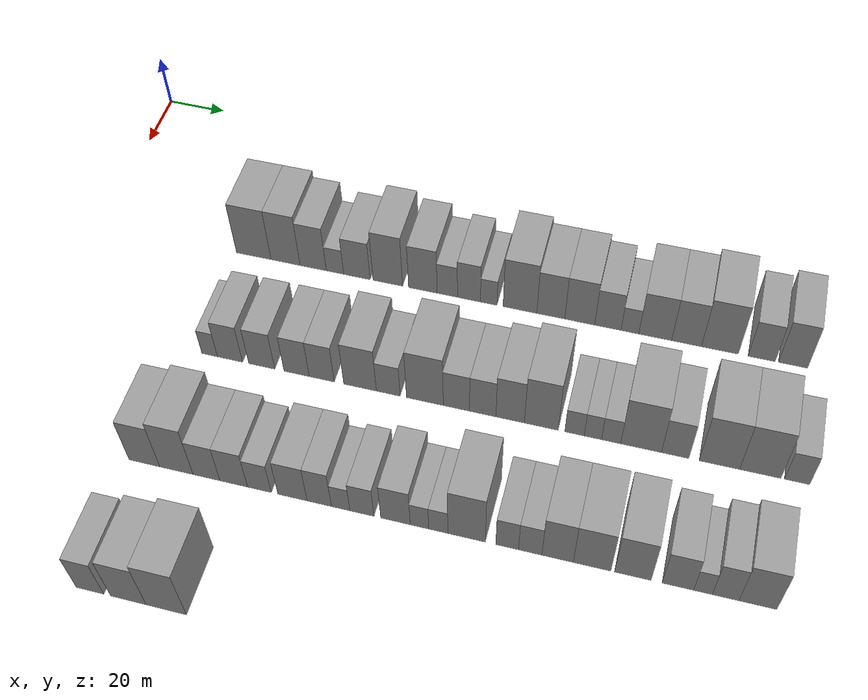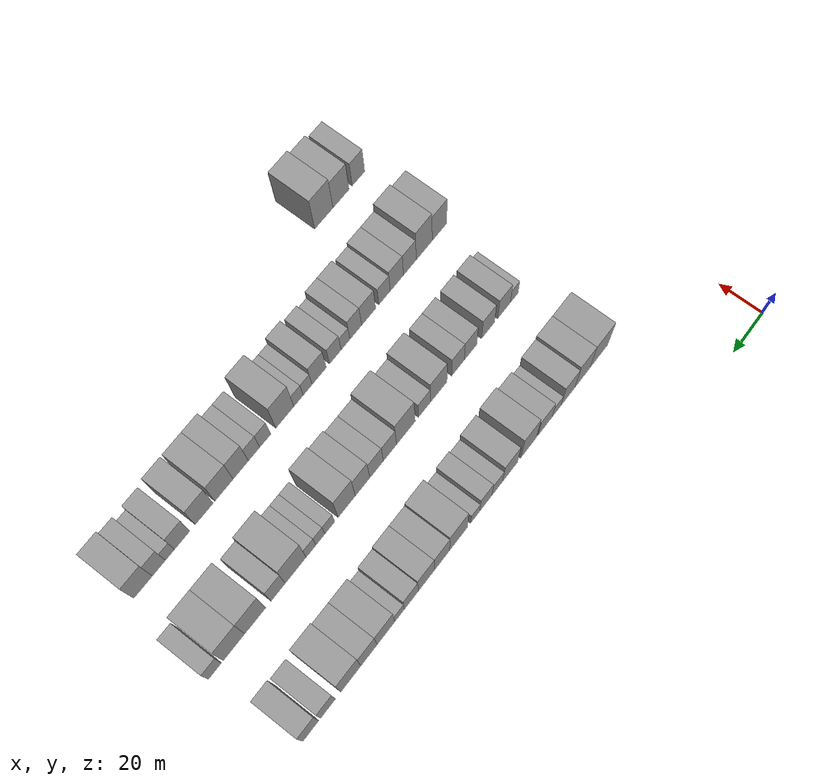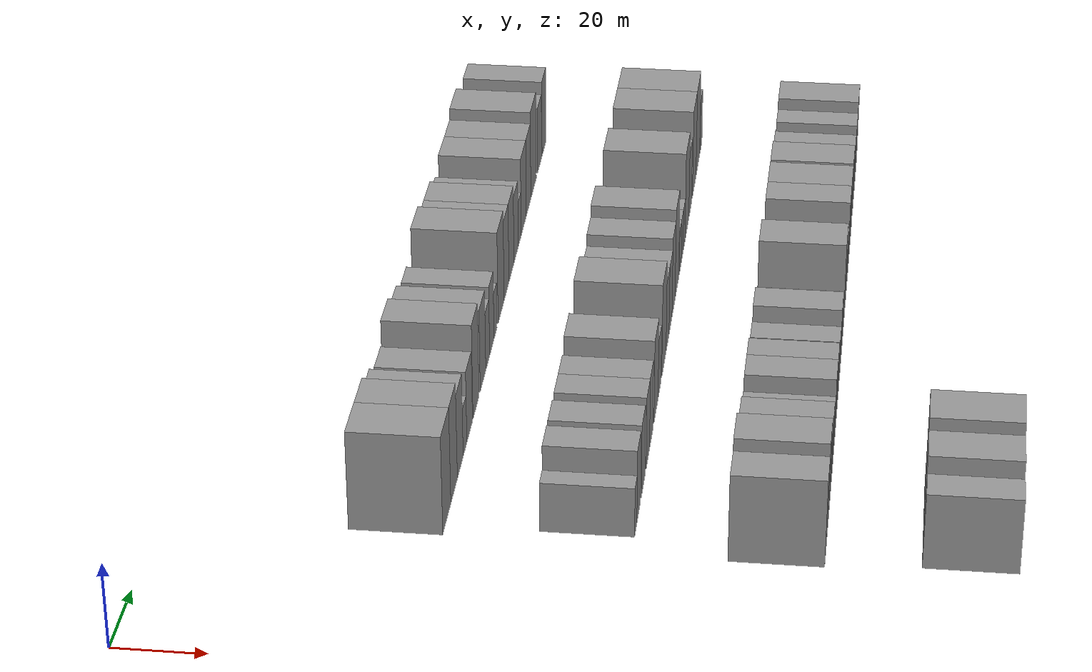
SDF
<sdf version="1.6">
 <world name="default">
  <model name="building_74">
   <static>1</static>
   <pose>50.0000 53.0995 0 0.000000 0.000000 0.000000</pose>
   <link name="link">
    <pose>0 0 12.00 0 0 0</pose>
    <collision name="collision"><geometry><box><size>20.0000 11.8979 24.0000</size></box></geometry></collision>
    <visual name="visual">
     <cast_shadows>0</cast_shadows>
     <geometry><box><size>20.0000 11.8979 24.0000</size></box></geometry>
     <material>
      <script>
       <uri>model://grey_wall/materials/scripts</uri>
       <uri>model://grey_wall/materials/textures</uri>
       <name>vrc/grey_wall</name>
      </script>
     </material>
    </visual>
   </link>
  </model>
  <model name="building_75">
   <static>1</static>
   <pose>50.0000 64.0061 0 0.000000 0.000000 0.000000</pose>
   <link name="link">
    <pose>0 0 12.00 0 0 0</pose>
    <collision name="collision"><geometry><box><size>20.0000 9.9154 24.0000</size></box></geometry></collision>
    <visual name="visual">
     <cast_shadows>0</cast_shadows>
     <geometry><box><size>20.0000 9.9154 24.0000</size></box></geometry>
     <material>
      <script>
       <uri>model://grey_wall/materials/scripts</uri>
       <uri>model://grey_wall/materials/textures</uri>
       <name>vrc/grey_wall</name>
      </script>
     </material>
    </visual>
   </link>
  </model>
  <model name="building_76">
   <static>1</static>
   <pose>50.0000 73.4314 0 0.000000 0.000000 0.000000</pose>
   <link name="link">
    <pose>0 0 10.50 0 0 0</pose>
    <collision name="collision"><geometry><box><size>20.0000 8.9352 21.0000</size></box></geometry></collision>
    <visual name="visual">
     <cast_shadows>0</cast_shadows>
     <geometry><box><size>20.0000 8.9352 21.0000</size></box></geometry>
     <material>
      <script>
       <uri>model://grey_wall/materials/scripts</uri>
       <uri>model://grey_wall/materials/textures</uri>
       <name>vrc/grey_wall</name>
      </script>
     </material>
    </visual>
   </link>
  </model>
  <model name="building_77">
   <static>1</static>
   <pose>50.0000 80.8159 0 0.000000 0.000000 0.000000</pose>
   <link name="link">
    <pose>0 0 6.00 0 0 0</pose>
    <collision name="collision"><geometry><box><size>20.0000 5.8337 12.0000</size></box></geometry></collision>
    <visual name="visual">
     <cast_shadows>0</cast_shadows>
     <geometry><box><size>20.0000 5.8337 12.0000</size></box></geometry>
     <material>
      <script>
       <uri>model://grey_wall/materials/scripts</uri>
       <uri>model://grey_wall/materials/textures</uri>
       <name>vrc/grey_wall</name>
      </script>
     </material>
    </visual>
   </link>
  </model>
  <model name="building_78">
   <static>1</static>
   <pose>50.0000 88.1796 0 0.000000 0.000000 0.000000</pose>
   <link name="link">
    <pose>0 0 9.00 0 0 0</pose>
    <collision name="collision"><geometry><box><size>20.0000 8.8938 18.0000</size></box></geometry></collision>
    <visual name="visual">
     <cast_shadows>0</cast_shadows>
     <geometry><box><size>20.0000 8.8938 18.0000</size></box></geometry>
     <material>
      <script>
       <uri>model://grey_wall/materials/scripts</uri>
       <uri>model://grey_wall/materials/textures</uri>
       <name>vrc/grey_wall</name>
      </script>
     </material>
    </visual>
   </link>
  </model>
  <model name="building_79">
   <static>1</static>
   <pose>50.0000 98.5539 0 0.000000 0.000000 0.000000</pose>
   <link name="link">
    <pose>0 0 12.00 0 0 0</pose>
    <collision name="collision"><geometry><box><size>20.0000 9.8548 24.0000</size></box></geometry></collision>
    <visual name="visual">
     <cast_shadows>0</cast_shadows>
     <geometry><box><size>20.0000 9.8548 24.0000</size></box></geometry>
     <material>
      <script>
       <uri>model://grey_wall/materials/scripts</uri>
       <uri>model://grey_wall/materials/textures</uri>
       <name>vrc/grey_wall</name>
      </script>
     </material>
    </visual>
   </link>
  </model>
  <model name="building_80">
   <static>1</static>
   <pose>50.0000 110.1919 0 0.000000 0.000000 0.000000</pose>
   <link name="link">
    <pose>0 0 10.50 0 0 0</pose>
    <collision name="collision"><geometry><box><size>20.0000 9.4211 21.0000</size></box></geometry></collision>
    <visual name="visual">
     <cast_shadows>0</cast_shadows>
     <geometry><box><size>20.0000 9.4211 21.0000</size></box></geometry>
     <material>
      <script>
       <uri>model://grey_wall/materials/scripts</uri>
       <uri>model://grey_wall/materials/textures</uri>
       <name>vrc/grey_wall</name>
      </script>
     </material>
    </visual>
   </link>
  </model>
  <model name="building_81">
   <static>1</static>
   <pose>50.0000 118.2377 0 0.000000 0.000000 0.000000</pose>
   <link name="link">
    <pose>0 0 7.50 0 0 0</pose>
    <collision name="collision"><geometry><box><size>20.0000 6.6705 15.0000</size></box></geometry></collision>
    <visual name="visual">
     <cast_shadows>0</cast_shadows>
     <geometry><box><size>20.0000 6.6705 15.0000</size></box></geometry>
     <material>
      <script>
       <uri>model://grey_wall/materials/scripts</uri>
       <uri>model://grey_wall/materials/textures</uri>
       <name>vrc/grey_wall</name>
      </script>
     </material>
    </visual>
   </link>
  </model>
  <model name="building_82">
   <static>1</static>
   <pose>50.0000 125.3388 0 0.000000 0.000000 0.000000</pose>
   <link name="link">
    <pose>0 0 9.00 0 0 0</pose>
    <collision name="collision"><geometry><box><size>20.0000 7.5318 18.0000</size></box></geometry></collision>
    <visual name="visual">
     <cast_shadows>0</cast_shadows>
     <geometry><box><size>20.0000 7.5318 18.0000</size></box></geometry>
     <material>
      <script>
       <uri>model://grey_wall/materials/scripts</uri>
       <uri>model://grey_wall/materials/textures</uri>
       <name>vrc/grey_wall</name>
      </script>
     </material>
    </visual>
   </link>
  </model>
  <model name="building_83">
   <static>1</static>
   <pose>50.0000 131.7995 0 0.000000 0.000000 0.000000</pose>
   <link name="link">
    <pose>0 0 6.00 0 0 0</pose>
    <collision name="collision"><geometry><box><size>20.0000 5.3895 12.0000</size></box></geometry></collision>
    <visual name="visual">
     <cast_shadows>0</cast_shadows>
     <geometry><box><size>20.0000 5.3895 12.0000</size></box></geometry>
     <material>
      <script>
       <uri>model://grey_wall/materials/scripts</uri>
       <uri>model://grey_wall/materials/textures</uri>
       <name>vrc/grey_wall</name>
      </script>
     </material>
    </visual>
   </link>
  </model>
  <model name="building_84">
   <static>1</static>
   <pose>50.0000 141.9292 0 0.000000 0.000000 0.000000</pose>
   <link name="link">
    <pose>0 0 12.00 0 0 0</pose>
    <collision name="collision"><geometry><box><size>20.0000 10.8699 24.0000</size></box></geometry></collision>
    <visual name="visual">
     <cast_shadows>0</cast_shadows>
     <geometry><box><size>20.0000 10.8699 24.0000</size></box></geometry>
     <material>
      <script>
       <uri>model://grey_wall/materials/scripts</uri>
       <uri>model://grey_wall/materials/textures</uri>
       <name>vrc/grey_wall</name>
      </script>
     </material>
    </visual>
   </link>
  </model>
  <model name="building_85">
   <static>1</static>
   <pose>50.0000 151.8474 0 0.000000 0.000000 0.000000</pose>
   <link name="link">
    <pose>0 0 10.50 0 0 0</pose>
    <collision name="collision"><geometry><box><size>20.0000 8.9664 21.0000</size></box></geometry></collision>
    <visual name="visual">
     <cast_shadows>0</cast_shadows>
     <geometry><box><size>20.0000 8.9664 21.0000</size></box></geometry>
     <material>
      <script>
       <uri>model://grey_wall/materials/scripts</uri>
       <uri>model://grey_wall/materials/textures</uri>
       <name>vrc/grey_wall</name>
      </script>
     </material>
    </visual>
   </link>
  </model>
  <model name="building_86">
   <static>1</static>
   <pose>50.0000 161.1051 0 0.000000 0.000000 0.000000</pose>
   <link name="link">
    <pose>0 0 10.50 0 0 0</pose>
    <collision name="collision"><geometry><box><size>20.0000 9.5489 21.0000</size></box></geometry></collision>
    <visual name="visual">
     <cast_shadows>0</cast_shadows>
     <geometry><box><size>20.0000 9.5489 21.0000</size></box></geometry>
     <material>
      <script>
       <uri>model://grey_wall/materials/scripts</uri>
       <uri>model://grey_wall/materials/textures</uri>
       <name>vrc/grey_wall</name>
      </script>
     </material>
    </visual>
   </link>
  </model>
  <model name="building_87">
   <static>1</static>
   <pose>50.0000 170.0418 0 0.000000 0.000000 0.000000</pose>
   <link name="link">
    <pose>0 0 9.00 0 0 0</pose>
    <collision name="collision"><geometry><box><size>20.0000 8.3246 18.0000</size></box></geometry></collision>
    <visual name="visual">
     <cast_shadows>0</cast_shadows>
     <geometry><box><size>20.0000 8.3246 18.0000</size></box></geometry>
     <material>
      <script>
       <uri>model://grey_wall/materials/scripts</uri>
       <uri>model://grey_wall/materials/textures</uri>
       <name>vrc/grey_wall</name>
      </script>
     </material>
    </visual>
   </link>
  </model>
  <model name="building_88">
   <static>1</static>
   <pose>50.0000 176.9949 0 0.000000 0.000000 0.000000</pose>
   <link name="link">
    <pose>0 0 6.00 0 0 0</pose>
    <collision name="collision"><geometry><box><size>20.0000 5.5816 12.0000</size></box></geometry></collision>
    <visual name="visual">
     <cast_shadows>0</cast_shadows>
     <geometry><box><size>20.0000 5.5816 12.0000</size></box></geometry>
     <material>
      <script>
       <uri>model://grey_wall/materials/scripts</uri>
       <uri>model://grey_wall/materials/textures</uri>
       <name>vrc/grey_wall</name>
      </script>
     </material>
    </visual>
   </link>
  </model>
  <model name="building_89">
   <static>1</static>
   <pose>50.0000 184.9259 0 0.000000 0.000000 0.000000</pose>
   <link name="link">
    <pose>0 0 10.50 0 0 0</pose>
    <collision name="collision"><geometry><box><size>20.0000 10.2804 21.0000</size></box></geometry></collision>
    <visual name="visual">
     <cast_shadows>0</cast_shadows>
     <geometry><box><size>20.0000 10.2804 21.0000</size></box></geometry>
     <material>
      <script>
       <uri>model://grey_wall/materials/scripts</uri>
       <uri>model://grey_wall/materials/textures</uri>
       <name>vrc/grey_wall</name>
      </script>
     </material>
    </visual>
   </link>
  </model>
  <model name="building_90">
   <static>1</static>
   <pose>50.0000 194.7069 0 0.000000 0.000000 0.000000</pose>
   <link name="link">
    <pose>0 0 10.50 0 0 0</pose>
    <collision name="collision"><geometry><box><size>20.0000 9.2816 21.0000</size></box></geometry></collision>
    <visual name="visual">
     <cast_shadows>0</cast_shadows>
     <geometry><box><size>20.0000 9.2816 21.0000</size></box></geometry>
     <material>
      <script>
       <uri>model://grey_wall/materials/scripts</uri>
       <uri>model://grey_wall/materials/textures</uri>
       <name>vrc/grey_wall</name>
      </script>
     </material>
    </visual>
   </link>
  </model>
  <model name="building_91">
   <static>1</static>
   <pose>50.0000 205.0362 0 0.000000 0.000000 0.000000</pose>
   <link name="link">
    <pose>0 0 12.00 0 0 0</pose>
    <collision name="collision"><geometry><box><size>20.0000 11.3770 24.0000</size></box></geometry></collision>
    <visual name="visual">
     <cast_shadows>0</cast_shadows>
     <geometry><box><size>20.0000 11.3770 24.0000</size></box></geometry>
     <material>
      <script>
       <uri>model://grey_wall/materials/scripts</uri>
       <uri>model://grey_wall/materials/textures</uri>
       <name>vrc/grey_wall</name>
      </script>
     </material>
    </visual>
   </link>
  </model>
  <model name="building_92">
   <static>1</static>
   <pose>50.0000 217.8585 0 0.000000 0.000000 0.000000</pose>
   <link name="link">
    <pose>0 0 9.00 0 0 0</pose>
    <collision name="collision"><geometry><box><size>20.0000 8.2677 18.0000</size></box></geometry></collision>
    <visual name="visual">
     <cast_shadows>0</cast_shadows>
     <geometry><box><size>20.0000 8.2677 18.0000</size></box></geometry>
     <material>
      <script>
       <uri>model://grey_wall/materials/scripts</uri>
       <uri>model://grey_wall/materials/textures</uri>
       <name>vrc/grey_wall</name>
      </script>
     </material>
    </visual>
   </link>
  </model>
  <model name="building_93">
   <static>1</static>
   <pose>50.0000 227.4027 0 0.000000 0.000000 0.000000</pose>
   <link name="link">
    <pose>0 0 10.50 0 0 0</pose>
    <collision name="collision"><geometry><box><size>20.0000 8.8206 21.0000</size></box></geometry></collision>
    <visual name="visual">
     <cast_shadows>0</cast_shadows>
     <geometry><box><size>20.0000 8.8206 21.0000</size></box></geometry>
     <material>
      <script>
       <uri>model://grey_wall/materials/scripts</uri>
       <uri>model://grey_wall/materials/textures</uri>
       <name>vrc/grey_wall</name>
      </script>
     </material>
    </visual>
   </link>
  </model>
  <model name="building_204">
   <static>1</static>
   <pose>90.0000 53.2055 0 0.000000 0.000000 0.000000</pose>
   <link name="link">
    <pose>0 0 6.00 0 0 0</pose>
    <collision name="collision"><geometry><box><size>20.0000 5.0664 12.0000</size></box></geometry></collision>
    <visual name="visual">
     <cast_shadows>0</cast_shadows>
     <geometry><box><size>20.0000 5.0664 12.0000</size></box></geometry>
     <material>
      <script>
       <uri>model://grey_wall/materials/scripts</uri>
       <uri>model://grey_wall/materials/textures</uri>
       <name>vrc/grey_wall</name>
      </script>
     </material>
    </visual>
   </link>
  </model>
  <model name="building_205">
   <static>1</static>
   <pose>90.0000 59.8243 0 0.000000 0.000000 0.000000</pose>
   <link name="link">
    <pose>0 0 9.00 0 0 0</pose>
    <collision name="collision"><geometry><box><size>20.0000 8.1713 18.0000</size></box></geometry></collision>
    <visual name="visual">
     <cast_shadows>0</cast_shadows>
     <geometry><box><size>20.0000 8.1713 18.0000</size></box></geometry>
     <material>
      <script>
       <uri>model://grey_wall/materials/scripts</uri>
       <uri>model://grey_wall/materials/textures</uri>
       <name>vrc/grey_wall</name>
      </script>
     </material>
    </visual>
   </link>
  </model>
  <model name="building_206">
   <static>1</static>
   <pose>90.0000 70.1009 0 0.000000 0.000000 0.000000</pose>
   <link name="link">
    <pose>0 0 9.00 0 0 0</pose>
    <collision name="collision"><geometry><box><size>20.0000 8.3819 18.0000</size></box></geometry></collision>
    <visual name="visual">
     <cast_shadows>0</cast_shadows>
     <geometry><box><size>20.0000 8.3819 18.0000</size></box></geometry>
     <material>
      <script>
       <uri>model://grey_wall/materials/scripts</uri>
       <uri>model://grey_wall/materials/textures</uri>
       <name>vrc/grey_wall</name>
      </script>
     </material>
    </visual>
   </link>
  </model>
  <model name="building_207">
   <static>1</static>
   <pose>90.0000 81.3185 0 0.000000 0.000000 0.000000</pose>
   <link name="link">
    <pose>0 0 9.00 0 0 0</pose>
    <collision name="collision"><geometry><box><size>20.0000 8.0533 18.0000</size></box></geometry></collision>
    <visual name="visual">
     <cast_shadows>0</cast_shadows>
     <geometry><box><size>20.0000 8.0533 18.0000</size></box></geometry>
     <material>
      <script>
       <uri>model://grey_wall/materials/scripts</uri>
       <uri>model://grey_wall/materials/textures</uri>
       <name>vrc/grey_wall</name>
      </script>
     </material>
    </visual>
   </link>
  </model>
  <model name="building_208">
   <static>1</static>
   <pose>90.0000 89.3182 0 0.000000 0.000000 0.000000</pose>
   <link name="link">
    <pose>0 0 9.00 0 0 0</pose>
    <collision name="collision"><geometry><box><size>20.0000 7.9461 18.0000</size></box></geometry></collision>
    <visual name="visual">
     <cast_shadows>0</cast_shadows>
     <geometry><box><size>20.0000 7.9461 18.0000</size></box></geometry>
     <material>
      <script>
       <uri>model://grey_wall/materials/scripts</uri>
       <uri>model://grey_wall/materials/textures</uri>
       <name>vrc/grey_wall</name>
      </script>
     </material>
    </visual>
   </link>
  </model>
  <model name="building_209">
   <static>1</static>
   <pose>90.0000 101.4234 0 0.000000 0.000000 0.000000</pose>
   <link name="link">
    <pose>0 0 10.50 0 0 0</pose>
    <collision name="collision"><geometry><box><size>20.0000 10.2644 21.0000</size></box></geometry></collision>
    <visual name="visual">
     <cast_shadows>0</cast_shadows>
     <geometry><box><size>20.0000 10.2644 21.0000</size></box></geometry>
     <material>
      <script>
       <uri>model://grey_wall/materials/scripts</uri>
       <uri>model://grey_wall/materials/textures</uri>
       <name>vrc/grey_wall</name>
      </script>
     </material>
    </visual>
   </link>
  </model>
  <model name="building_210">
   <static>1</static>
   <pose>90.0000 110.2679 0 0.000000 0.000000 0.000000</pose>
   <link name="link">
    <pose>0 0 7.50 0 0 0</pose>
    <collision name="collision"><geometry><box><size>20.0000 7.4246 15.0000</size></box></geometry></collision>
    <visual name="visual">
     <cast_shadows>0</cast_shadows>
     <geometry><box><size>20.0000 7.4246 15.0000</size></box></geometry>
     <material>
      <script>
       <uri>model://grey_wall/materials/scripts</uri>
       <uri>model://grey_wall/materials/textures</uri>
       <name>vrc/grey_wall</name>
      </script>
     </material>
    </visual>
   </link>
  </model>
  <model name="building_211">
   <static>1</static>
   <pose>90.0000 121.6777 0 0.000000 0.000000 0.000000</pose>
   <link name="link">
    <pose>0 0 12.00 0 0 0</pose>
    <collision name="collision"><geometry><box><size>20.0000 11.3949 24.0000</size></box></geometry></collision>
    <visual name="visual">
     <cast_shadows>0</cast_shadows>
     <geometry><box><size>20.0000 11.3949 24.0000</size></box></geometry>
     <material>
      <script>
       <uri>model://grey_wall/materials/scripts</uri>
       <uri>model://grey_wall/materials/textures</uri>
       <name>vrc/grey_wall</name>
      </script>
     </material>
    </visual>
   </link>
  </model>
  <model name="building_212">
   <static>1</static>
   <pose>90.0000 131.4079 0 0.000000 0.000000 0.000000</pose>
   <link name="link">
    <pose>0 0 9.00 0 0 0</pose>
    <collision name="collision"><geometry><box><size>20.0000 8.0655 18.0000</size></box></geometry></collision>
    <visual name="visual">
     <cast_shadows>0</cast_shadows>
     <geometry><box><size>20.0000 8.0655 18.0000</size></box></geometry>
     <material>
      <script>
       <uri>model://grey_wall/materials/scripts</uri>
       <uri>model://grey_wall/materials/textures</uri>
       <name>vrc/grey_wall</name>
      </script>
     </material>
    </visual>
   </link>
  </model>
  <model name="building_213">
   <static>1</static>
   <pose>90.0000 139.4725 0 0.000000 0.000000 0.000000</pose>
   <link name="link">
    <pose>0 0 9.00 0 0 0</pose>
    <collision name="collision"><geometry><box><size>20.0000 8.0638 18.0000</size></box></geometry></collision>
    <visual name="visual">
     <cast_shadows>0</cast_shadows>
     <geometry><box><size>20.0000 8.0638 18.0000</size></box></geometry>
     <material>
      <script>
       <uri>model://grey_wall/materials/scripts</uri>
       <uri>model://grey_wall/materials/textures</uri>
       <name>vrc/grey_wall</name>
      </script>
     </material>
    </visual>
   </link>
  </model>
  <model name="building_214">
   <static>1</static>
   <pose>90.0000 147.8341 0 0.000000 0.000000 0.000000</pose>
   <link name="link">
    <pose>0 0 10.50 0 0 0</pose>
    <collision name="collision"><geometry><box><size>20.0000 8.6593 21.0000</size></box></geometry></collision>
    <visual name="visual">
     <cast_shadows>0</cast_shadows>
     <geometry><box><size>20.0000 8.6593 21.0000</size></box></geometry>
     <material>
      <script>
       <uri>model://grey_wall/materials/scripts</uri>
       <uri>model://grey_wall/materials/textures</uri>
       <name>vrc/grey_wall</name>
      </script>
     </material>
    </visual>
   </link>
  </model>
  <model name="building_215">
   <static>1</static>
   <pose>90.0000 157.2550 0 0.000000 0.000000 0.000000</pose>
   <link name="link">
    <pose>0 0 12.00 0 0 0</pose>
    <collision name="collision"><geometry><box><size>20.0000 10.1827 24.0000</size></box></geometry></collision>
    <visual name="visual">
     <cast_shadows>0</cast_shadows>
     <geometry><box><size>20.0000 10.1827 24.0000</size></box></geometry>
     <material>
      <script>
       <uri>model://grey_wall/materials/scripts</uri>
       <uri>model://grey_wall/materials/textures</uri>
       <name>vrc/grey_wall</name>
      </script>
     </material>
    </visual>
   </link>
  </model>
  <model name="building_216">
   <static>1</static>
   <pose>90.0000 167.2280 0 0.000000 0.000000 0.000000</pose>
   <link name="link">
    <pose>0 0 6.00 0 0 0</pose>
    <collision name="collision"><geometry><box><size>20.0000 5.7632 12.0000</size></box></geometry></collision>
    <visual name="visual">
     <cast_shadows>0</cast_shadows>
     <geometry><box><size>20.0000 5.7632 12.0000</size></box></geometry>
     <material>
      <script>
       <uri>model://grey_wall/materials/scripts</uri>
       <uri>model://grey_wall/materials/textures</uri>
       <name>vrc/grey_wall</name>
      </script>
     </material>
    </visual>
   </link>
  </model>
  <model name="building_217">
   <static>1</static>
   <pose>90.0000 172.7026 0 0.000000 0.000000 0.000000</pose>
   <link name="link">
    <pose>0 0 6.00 0 0 0</pose>
    <collision name="collision"><geometry><box><size>20.0000 5.1862 12.0000</size></box></geometry></collision>
    <visual name="visual">
     <cast_shadows>0</cast_shadows>
     <geometry><box><size>20.0000 5.1862 12.0000</size></box></geometry>
     <material>
      <script>
       <uri>model://grey_wall/materials/scripts</uri>
       <uri>model://grey_wall/materials/textures</uri>
       <name>vrc/grey_wall</name>
      </script>
     </material>
    </visual>
   </link>
  </model>
  <model name="building_218">
   <static>1</static>
   <pose>90.0000 178.1284 0 0.000000 0.000000 0.000000</pose>
   <link name="link">
    <pose>0 0 6.00 0 0 0</pose>
    <collision name="collision"><geometry><box><size>20.0000 5.6655 12.0000</size></box></geometry></collision>
    <visual name="visual">
     <cast_shadows>0</cast_shadows>
     <geometry><box><size>20.0000 5.6655 12.0000</size></box></geometry>
     <material>
      <script>
       <uri>model://grey_wall/materials/scripts</uri>
       <uri>model://grey_wall/materials/textures</uri>
       <name>vrc/grey_wall</name>
      </script>
     </material>
    </visual>
   </link>
  </model>
  <model name="building_219">
   <static>1</static>
   <pose>90.0000 186.9507 0 0.000000 0.000000 0.000000</pose>
   <link name="link">
    <pose>0 0 12.00 0 0 0</pose>
    <collision name="collision"><geometry><box><size>20.0000 11.9791 24.0000</size></box></geometry></collision>
    <visual name="visual">
     <cast_shadows>0</cast_shadows>
     <geometry><box><size>20.0000 11.9791 24.0000</size></box></geometry>
     <material>
      <script>
       <uri>model://grey_wall/materials/scripts</uri>
       <uri>model://grey_wall/materials/textures</uri>
       <name>vrc/grey_wall</name>
      </script>
     </material>
    </visual>
   </link>
  </model>
  <model name="building_220">
   <static>1</static>
   <pose>90.0000 196.9672 0 0.000000 0.000000 0.000000</pose>
   <link name="link">
    <pose>0 0 9.00 0 0 0</pose>
    <collision name="collision"><geometry><box><size>20.0000 8.0538 18.0000</size></box></geometry></collision>
    <visual name="visual">
     <cast_shadows>0</cast_shadows>
     <geometry><box><size>20.0000 8.0538 18.0000</size></box></geometry>
     <material>
      <script>
       <uri>model://grey_wall/materials/scripts</uri>
       <uri>model://grey_wall/materials/textures</uri>
       <name>vrc/grey_wall</name>
      </script>
     </material>
    </visual>
   </link>
  </model>
  <model name="building_221">
   <static>1</static>
   <pose>90.0000 209.8350 0 0.000000 0.000000 0.000000</pose>
   <link name="link">
    <pose>0 0 12.00 0 0 0</pose>
    <collision name="collision"><geometry><box><size>20.0000 11.6819 24.0000</size></box></geometry></collision>
    <visual name="visual">
     <cast_shadows>0</cast_shadows>
     <geometry><box><size>20.0000 11.6819 24.0000</size></box></geometry>
     <material>
      <script>
       <uri>model://grey_wall/materials/scripts</uri>
       <uri>model://grey_wall/materials/textures</uri>
       <name>vrc/grey_wall</name>
      </script>
     </material>
    </visual>
   </link>
  </model>
  <model name="building_222">
   <static>1</static>
   <pose>90.0000 221.5888 0 0.000000 0.000000 0.000000</pose>
   <link name="link">
    <pose>0 0 12.00 0 0 0</pose>
    <collision name="collision"><geometry><box><size>20.0000 11.8256 24.0000</size></box></geometry></collision>
    <visual name="visual">
     <cast_shadows>0</cast_shadows>
     <geometry><box><size>20.0000 11.8256 24.0000</size></box></geometry>
     <material>
      <script>
       <uri>model://grey_wall/materials/scripts</uri>
       <uri>model://grey_wall/materials/textures</uri>
       <name>vrc/grey_wall</name>
      </script>
     </material>
    </visual>
   </link>
  </model>
  <model name="building_223">
   <static>1</static>
   <pose>90.0000 232.0956 0 0.000000 0.000000 0.000000</pose>
   <link name="link">
    <pose>0 0 7.50 0 0 0</pose>
    <collision name="collision"><geometry><box><size>20.0000 7.1879 15.0000</size></box></geometry></collision>
    <visual name="visual">
     <cast_shadows>0</cast_shadows>
     <geometry><box><size>20.0000 7.1879 15.0000</size></box></geometry>
     <material>
      <script>
       <uri>model://grey_wall/materials/scripts</uri>
       <uri>model://grey_wall/materials/textures</uri>
       <name>vrc/grey_wall</name>
      </script>
     </material>
    </visual>
   </link>
  </model>
  <model name="building_344">
   <static>1</static>
   <pose>130.0000 48.5092 0 0.000000 0.000000 0.000000</pose>
   <link name="link">
    <pose>0 0 10.50 0 0 0</pose>
    <collision name="collision"><geometry><box><size>20.0000 9.4973 21.0000</size></box></geometry></collision>
    <visual name="visual">
     <cast_shadows>0</cast_shadows>
     <geometry><box><size>20.0000 9.4973 21.0000</size></box></geometry>
     <material>
      <script>
       <uri>model://grey_wall/materials/scripts</uri>
       <uri>model://grey_wall/materials/textures</uri>
       <name>vrc/grey_wall</name>
      </script>
     </material>
    </visual>
   </link>
  </model>
  <model name="building_345">
   <static>1</static>
   <pose>130.0000 58.3825 0 0.000000 0.000000 0.000000</pose>
   <link name="link">
    <pose>0 0 12.00 0 0 0</pose>
    <collision name="collision"><geometry><box><size>20.0000 10.2495 24.0000</size></box></geometry></collision>
    <visual name="visual">
     <cast_shadows>0</cast_shadows>
     <geometry><box><size>20.0000 10.2495 24.0000</size></box></geometry>
     <material>
      <script>
       <uri>model://grey_wall/materials/scripts</uri>
       <uri>model://grey_wall/materials/textures</uri>
       <name>vrc/grey_wall</name>
      </script>
     </material>
    </visual>
   </link>
  </model>
  <model name="building_346">
   <static>1</static>
   <pose>130.0000 67.6126 0 0.000000 0.000000 0.000000</pose>
   <link name="link">
    <pose>0 0 9.00 0 0 0</pose>
    <collision name="collision"><geometry><box><size>20.0000 8.2106 18.0000</size></box></geometry></collision>
    <visual name="visual">
     <cast_shadows>0</cast_shadows>
     <geometry><box><size>20.0000 8.2106 18.0000</size></box></geometry>
     <material>
      <script>
       <uri>model://grey_wall/materials/scripts</uri>
       <uri>model://grey_wall/materials/textures</uri>
       <name>vrc/grey_wall</name>
      </script>
     </material>
    </visual>
   </link>
  </model>
  <model name="building_347">
   <static>1</static>
   <pose>130.0000 75.9115 0 0.000000 0.000000 0.000000</pose>
   <link name="link">
    <pose>0 0 9.00 0 0 0</pose>
    <collision name="collision"><geometry><box><size>20.0000 8.3872 18.0000</size></box></geometry></collision>
    <visual name="visual">
     <cast_shadows>0</cast_shadows>
     <geometry><box><size>20.0000 8.3872 18.0000</size></box></geometry>
     <material>
      <script>
       <uri>model://grey_wall/materials/scripts</uri>
       <uri>model://grey_wall/materials/textures</uri>
       <name>vrc/grey_wall</name>
      </script>
     </material>
    </visual>
   </link>
  </model>
  <model name="building_348">
   <static>1</static>
   <pose>130.0000 83.6707 0 0.000000 0.000000 0.000000</pose>
   <link name="link">
    <pose>0 0 7.50 0 0 0</pose>
    <collision name="collision"><geometry><box><size>20.0000 7.1312 15.0000</size></box></geometry></collision>
    <visual name="visual">
     <cast_shadows>0</cast_shadows>
     <geometry><box><size>20.0000 7.1312 15.0000</size></box></geometry>
     <material>
      <script>
       <uri>model://grey_wall/materials/scripts</uri>
       <uri>model://grey_wall/materials/textures</uri>
       <name>vrc/grey_wall</name>
      </script>
     </material>
    </visual>
   </link>
  </model>
  <model name="building_349">
   <static>1</static>
   <pose>130.0000 93.5987 0 0.000000 0.000000 0.000000</pose>
   <link name="link">
    <pose>0 0 9.00 0 0 0</pose>
    <collision name="collision"><geometry><box><size>20.0000 8.7247 18.0000</size></box></geometry></collision>
    <visual name="visual">
     <cast_shadows>0</cast_shadows>
     <geometry><box><size>20.0000 8.7247 18.0000</size></box></geometry>
     <material>
      <script>
       <uri>model://grey_wall/materials/scripts</uri>
       <uri>model://grey_wall/materials/textures</uri>
       <name>vrc/grey_wall</name>
      </script>
     </material>
    </visual>
   </link>
  </model>
  <model name="building_350">
   <static>1</static>
   <pose>130.0000 101.5778 0 0.000000 0.000000 0.000000</pose>
   <link name="link">
    <pose>0 0 9.00 0 0 0</pose>
    <collision name="collision"><geometry><box><size>20.0000 7.2336 18.0000</size></box></geometry></collision>
    <visual name="visual">
     <cast_shadows>0</cast_shadows>
     <geometry><box><size>20.0000 7.2336 18.0000</size></box></geometry>
     <material>
      <script>
       <uri>model://grey_wall/materials/scripts</uri>
       <uri>model://grey_wall/materials/textures</uri>
       <name>vrc/grey_wall</name>
      </script>
     </material>
    </visual>
   </link>
  </model>
  <model name="building_351">
   <static>1</static>
   <pose>130.0000 107.9066 0 0.000000 0.000000 0.000000</pose>
   <link name="link">
    <pose>0 0 6.00 0 0 0</pose>
    <collision name="collision"><geometry><box><size>20.0000 5.4239 12.0000</size></box></geometry></collision>
    <visual name="visual">
     <cast_shadows>0</cast_shadows>
     <geometry><box><size>20.0000 5.4239 12.0000</size></box></geometry>
     <material>
      <script>
       <uri>model://grey_wall/materials/scripts</uri>
       <uri>model://grey_wall/materials/textures</uri>
       <name>vrc/grey_wall</name>
      </script>
     </material>
    </visual>
   </link>
  </model>
  <model name="building_352">
   <static>1</static>
   <pose>130.0000 114.1567 0 0.000000 0.000000 0.000000</pose>
   <link name="link">
    <pose>0 0 7.50 0 0 0</pose>
    <collision name="collision"><geometry><box><size>20.0000 7.0765 15.0000</size></box></geometry></collision>
    <visual name="visual">
     <cast_shadows>0</cast_shadows>
     <geometry><box><size>20.0000 7.0765 15.0000</size></box></geometry>
     <material>
      <script>
       <uri>model://grey_wall/materials/scripts</uri>
       <uri>model://grey_wall/materials/textures</uri>
       <name>vrc/grey_wall</name>
      </script>
     </material>
    </visual>
   </link>
  </model>
  <model name="building_353">
   <static>1</static>
   <pose>130.0000 123.9784 0 0.000000 0.000000 0.000000</pose>
   <link name="link">
    <pose>0 0 9.00 0 0 0</pose>
    <collision name="collision"><geometry><box><size>20.0000 8.5667 18.0000</size></box></geometry></collision>
    <visual name="visual">
     <cast_shadows>0</cast_shadows>
     <geometry><box><size>20.0000 8.5667 18.0000</size></box></geometry>
     <material>
      <script>
       <uri>model://grey_wall/materials/scripts</uri>
       <uri>model://grey_wall/materials/textures</uri>
       <name>vrc/grey_wall</name>
      </script>
     </material>
    </visual>
   </link>
  </model>
  <model name="building_354">
   <static>1</static>
   <pose>130.0000 130.9368 0 0.000000 0.000000 0.000000</pose>
   <link name="link">
    <pose>0 0 6.00 0 0 0</pose>
    <collision name="collision"><geometry><box><size>20.0000 5.3502 12.0000</size></box></geometry></collision>
    <visual name="visual">
     <cast_shadows>0</cast_shadows>
     <geometry><box><size>20.0000 5.3502 12.0000</size></box></geometry>
     <material>
      <script>
       <uri>model://grey_wall/materials/scripts</uri>
       <uri>model://grey_wall/materials/textures</uri>
       <name>vrc/grey_wall</name>
      </script>
     </material>
    </visual>
   </link>
  </model>
  <model name="building_355">
   <static>1</static>
   <pose>130.0000 136.3821 0 0.000000 0.000000 0.000000</pose>
   <link name="link">
    <pose>0 0 6.00 0 0 0</pose>
    <collision name="collision"><geometry><box><size>20.0000 5.5404 12.0000</size></box></geometry></collision>
    <visual name="visual">
     <cast_shadows>0</cast_shadows>
     <geometry><box><size>20.0000 5.5404 12.0000</size></box></geometry>
     <material>
      <script>
       <uri>model://grey_wall/materials/scripts</uri>
       <uri>model://grey_wall/materials/textures</uri>
       <name>vrc/grey_wall</name>
      </script>
     </material>
    </visual>
   </link>
  </model>
  <model name="building_356">
   <static>1</static>
   <pose>130.0000 144.5022 0 0.000000 0.000000 0.000000</pose>
   <link name="link">
    <pose>0 0 12.00 0 0 0</pose>
    <collision name="collision"><geometry><box><size>20.0000 10.6997 24.0000</size></box></geometry></collision>
    <visual name="visual">
     <cast_shadows>0</cast_shadows>
     <geometry><box><size>20.0000 10.6997 24.0000</size></box></geometry>
     <material>
      <script>
       <uri>model://grey_wall/materials/scripts</uri>
       <uri>model://grey_wall/materials/textures</uri>
       <name>vrc/grey_wall</name>
      </script>
     </material>
    </visual>
   </link>
  </model>
  <model name="building_357">
   <static>1</static>
   <pose>130.0000 156.0625 0 0.000000 0.000000 0.000000</pose>
   <link name="link">
    <pose>0 0 7.50 0 0 0</pose>
    <collision name="collision"><geometry><box><size>20.0000 6.4210 15.0000</size></box></geometry></collision>
    <visual name="visual">
     <cast_shadows>0</cast_shadows>
     <geometry><box><size>20.0000 6.4210 15.0000</size></box></geometry>
     <material>
      <script>
       <uri>model://grey_wall/materials/scripts</uri>
       <uri>model://grey_wall/materials/textures</uri>
       <name>vrc/grey_wall</name>
      </script>
     </material>
    </visual>
   </link>
  </model>
  <model name="building_358">
   <static>1</static>
   <pose>130.0000 162.5771 0 0.000000 0.000000 0.000000</pose>
   <link name="link">
    <pose>0 0 7.50 0 0 0</pose>
    <collision name="collision"><geometry><box><size>20.0000 6.6081 15.0000</size></box></geometry></collision>
    <visual name="visual">
     <cast_shadows>0</cast_shadows>
     <geometry><box><size>20.0000 6.6081 15.0000</size></box></geometry>
     <material>
      <script>
       <uri>model://grey_wall/materials/scripts</uri>
       <uri>model://grey_wall/materials/textures</uri>
       <name>vrc/grey_wall</name>
      </script>
     </material>
    </visual>
   </link>
  </model>
  <model name="building_359">
   <static>1</static>
   <pose>130.0000 170.2885 0 0.000000 0.000000 0.000000</pose>
   <link name="link">
    <pose>0 0 10.50 0 0 0</pose>
    <collision name="collision"><geometry><box><size>20.0000 8.8147 21.0000</size></box></geometry></collision>
    <visual name="visual">
     <cast_shadows>0</cast_shadows>
     <geometry><box><size>20.0000 8.8147 21.0000</size></box></geometry>
     <material>
      <script>
       <uri>model://grey_wall/materials/scripts</uri>
       <uri>model://grey_wall/materials/textures</uri>
       <name>vrc/grey_wall</name>
      </script>
     </material>
    </visual>
   </link>
  </model>
  <model name="building_360">
   <static>1</static>
   <pose>130.0000 179.9246 0 0.000000 0.000000 0.000000</pose>
   <link name="link">
    <pose>0 0 10.50 0 0 0</pose>
    <collision name="collision"><geometry><box><size>20.0000 10.4574 21.0000</size></box></geometry></collision>
    <visual name="visual">
     <cast_shadows>0</cast_shadows>
     <geometry><box><size>20.0000 10.4574 21.0000</size></box></geometry>
     <material>
      <script>
       <uri>model://grey_wall/materials/scripts</uri>
       <uri>model://grey_wall/materials/textures</uri>
       <name>vrc/grey_wall</name>
      </script>
     </material>
    </visual>
   </link>
  </model>
  <model name="building_361">
   <static>1</static>
   <pose>130.0000 191.1960 0 0.000000 0.000000 0.000000</pose>
   <link name="link">
    <pose>0 0 10.50 0 0 0</pose>
    <collision name="collision"><geometry><box><size>20.0000 10.0855 21.0000</size></box></geometry></collision>
    <visual name="visual">
     <cast_shadows>0</cast_shadows>
     <geometry><box><size>20.0000 10.0855 21.0000</size></box></geometry>
     <material>
      <script>
       <uri>model://grey_wall/materials/scripts</uri>
       <uri>model://grey_wall/materials/textures</uri>
       <name>vrc/grey_wall</name>
      </script>
     </material>
    </visual>
   </link>
  </model>
  <model name="building_362">
   <static>1</static>
   <pose>130.0000 203.5257 0 0.000000 0.000000 0.000000</pose>
   <link name="link">
    <pose>0 0 9.00 0 0 0</pose>
    <collision name="collision"><geometry><box><size>20.0000 8.5740 18.0000</size></box></geometry></collision>
    <visual name="visual">
     <cast_shadows>0</cast_shadows>
     <geometry><box><size>20.0000 8.5740 18.0000</size></box></geometry>
     <material>
      <script>
       <uri>model://grey_wall/materials/scripts</uri>
       <uri>model://grey_wall/materials/textures</uri>
       <name>vrc/grey_wall</name>
      </script>
     </material>
    </visual>
   </link>
  </model>
  <model name="building_363">
   <static>1</static>
   <pose>130.0000 210.3344 0 0.000000 0.000000 0.000000</pose>
   <link name="link">
    <pose>0 0 6.00 0 0 0</pose>
    <collision name="collision"><geometry><box><size>20.0000 5.0434 12.0000</size></box></geometry></collision>
    <visual name="visual">
     <cast_shadows>0</cast_shadows>
     <geometry><box><size>20.0000 5.0434 12.0000</size></box></geometry>
     <material>
      <script>
       <uri>model://grey_wall/materials/scripts</uri>
       <uri>model://grey_wall/materials/textures</uri>
       <name>vrc/grey_wall</name>
      </script>
     </material>
    </visual>
   </link>
  </model>
  <model name="building_364">
   <static>1</static>
   <pose>130.0000 216.4618 0 0.000000 0.000000 0.000000</pose>
   <link name="link">
    <pose>0 0 9.00 0 0 0</pose>
    <collision name="collision"><geometry><box><size>20.0000 7.2114 18.0000</size></box></geometry></collision>
    <visual name="visual">
     <cast_shadows>0</cast_shadows>
     <geometry><box><size>20.0000 7.2114 18.0000</size></box></geometry>
     <material>
      <script>
       <uri>model://grey_wall/materials/scripts</uri>
       <uri>model://grey_wall/materials/textures</uri>
       <name>vrc/grey_wall</name>
      </script>
     </material>
    </visual>
   </link>
  </model>
  <model name="building_365">
   <static>1</static>
   <pose>130.0000 225.1356 0 0.000000 0.000000 0.000000</pose>
   <link name="link">
    <pose>0 0 10.50 0 0 0</pose>
    <collision name="collision"><geometry><box><size>20.0000 10.1361 21.0000</size></box></geometry></collision>
    <visual name="visual">
     <cast_shadows>0</cast_shadows>
     <geometry><box><size>20.0000 10.1361 21.0000</size></box></geometry>
     <material>
      <script>
       <uri>model://grey_wall/materials/scripts</uri>
       <uri>model://grey_wall/materials/textures</uri>
       <name>vrc/grey_wall</name>
      </script>
     </material>
    </visual>
   </link>
  </model>
  <model name="building_481">
   <static>1</static>
   <pose>170.0000 49.5810 0 0.000000 0.000000 0.000000</pose>
   <link name="link">
    <pose>0 0 9.00 0 0 0</pose>
    <collision name="collision"><geometry><box><size>20.0000 8.0035 18.0000</size></box></geometry></collision>
    <visual name="visual">
     <cast_shadows>0</cast_shadows>
     <geometry><box><size>20.0000 8.0035 18.0000</size></box></geometry>
     <material>
      <script>
       <uri>model://grey_wall/materials/scripts</uri>
       <uri>model://grey_wall/materials/textures</uri>
       <name>vrc/grey_wall</name>
      </script>
     </material>
    </visual>
   </link>
  </model>
  <model name="building_482">
   <static>1</static>
   <pose>170.0000 60.7104 0 0.000000 0.000000 0.000000</pose>
   <link name="link">
    <pose>0 0 10.50 0 0 0</pose>
    <collision name="collision"><geometry><box><size>20.0000 10.2553 21.0000</size></box></geometry></collision>
    <visual name="visual">
     <cast_shadows>0</cast_shadows>
     <geometry><box><size>20.0000 10.2553 21.0000</size></box></geometry>
     <material>
      <script>
       <uri>model://grey_wall/materials/scripts</uri>
       <uri>model://grey_wall/materials/textures</uri>
       <name>vrc/grey_wall</name>
      </script>
     </material>
    </visual>
   </link>
  </model>
  <model name="building_483">
   <static>1</static>
   <pose>170.0000 71.6045 0 0.000000 0.000000 0.000000</pose>
   <link name="link">
    <pose>0 0 12.00 0 0 0</pose>
    <collision name="collision"><geometry><box><size>20.0000 11.5330 24.0000</size></box></geometry></collision>
    <visual name="visual">
     <cast_shadows>0</cast_shadows>
     <geometry><box><size>20.0000 11.5330 24.0000</size></box></geometry>
     <material>
      <script>
       <uri>model://grey_wall/materials/scripts</uri>
       <uri>model://grey_wall/materials/textures</uri>
       <name>vrc/grey_wall</name>
      </script>
     </material>
    </visual>
   </link>
  </model>
 </world>
</sdf>
